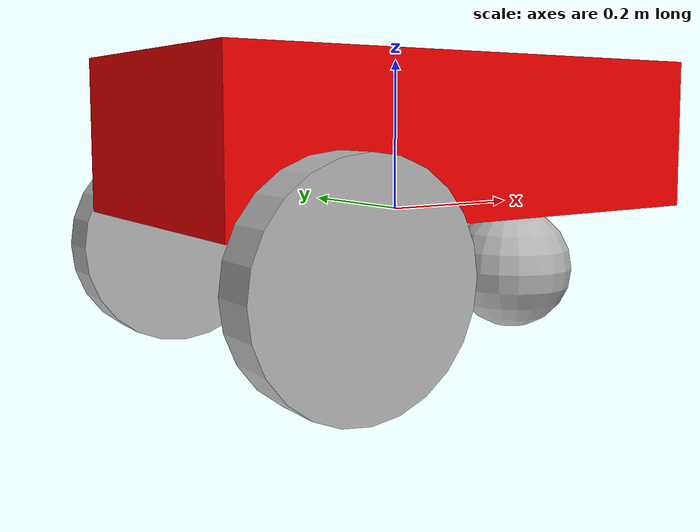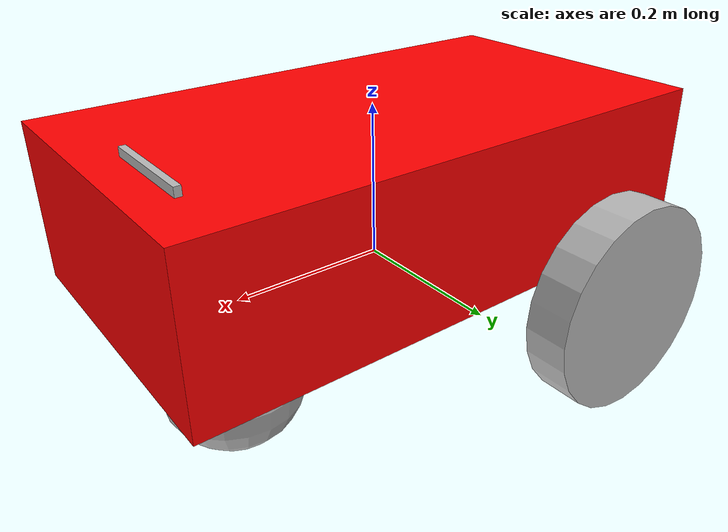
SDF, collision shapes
<?xml version="1.0" ?>

<sdf version="1.5">
  <model name="basic_mobile_bot">
  <static>false</static>

  <!-- ****************** ROBOT BASE FOOTPRINT ***************************  -->
  <pose>0.0 0.0 0.0 0.0 0.0 0.0</pose>
  <link name="base_footprint"/>

  <!-- ********************** ROBOT BASE *********************************  -->
  <link name="base_link">

    <collision name="base_collision">
      <pose>0 0 0.1 0 0 0</pose>
      <geometry>
        <box>
          <size>0.70 0.39 0.20</size>
        </box>
      </geometry>
    </collision>

    <visual name="base_visual">
      <pose>0 0 -0.05 1.5707963267949 0 3.141592654</pose>
      <geometry>
        <mesh>
          <uri>model://basic_mobile_bot_description/meshes/robot_base.stl</uri>
          <scale>1.0 1.0 1.0</scale>
        </mesh>
      </geometry>
      <material>
        <ambient>1.0 0.0 0.0 1.0</ambient>
        <diffuse>1.0 0.0 0.0 1.0</diffuse>
        <specular>0.0 0.0 0.0 1.0</specular>
        <emissive>0.0 0.0 0.0 1.0</emissive>
      </material>
    </visual>
  </link>

  <!-- *********************** IMU SENSOR SETUP **************************  -->
  <link name="imu_link">
      <sensor name="tb3_imu" type="imu">
        <always_on>true</always_on>
        <update_rate>200</update_rate>
        <visualize>true</visualize>
        <imu>
          <angular_velocity>
            <x>
              <noise type="gaussian">
                <mean>0.0</mean>
                <stddev>2e-4</stddev>
              </noise>
            </x>
            <y>
              <noise type="gaussian">
                <mean>0.0</mean>
                <stddev>2e-4</stddev>
              </noise>
            </y>
            <z>
              <noise type="gaussian">
                <mean>0.0</mean>
                <stddev>2e-4</stddev>
              </noise>
            </z>
          </angular_velocity>
          <linear_acceleration>
            <x>
              <noise type="gaussian">
                <mean>0.0</mean>
                <stddev>1.7e-2</stddev>
              </noise>
            </x>
            <y>
              <noise type="gaussian">
                <mean>0.0</mean>
                <stddev>1.7e-2</stddev>
              </noise>
            </y>
            <z>
              <noise type="gaussian">
                <mean>0.0</mean>
                <stddev>1.7e-2</stddev>
              </noise>
            </z>
          </linear_acceleration>
        </imu>
        <plugin name="turtlebot3_imu" filename="libgazebo_ros_imu_sensor.so">
          <initial_orientation_as_reference>false</initial_orientation_as_reference>
          <frame_name>imu_link</frame_name>
          <ros>
            <namespace>/imu</namespace>
            <remapping>~/out:=data</remapping>
          </ros>
        </plugin>
      </sensor>
    </link>

<!-- ****************************** Realsense Camera *****************************    -->
  <link name="realsense_link">

      <inertial>
        <pose>0.3 0 0.2 0 0 0</pose>

        <inertia>
          <ixx>0.001</ixx>
          <ixy>0.000</ixy>
          <ixz>0.000</ixz>
          <iyy>0.001</iyy>
          <iyz>0.000</iyz>
          <izz>0.001</izz>
        </inertia>
        <mass>0.035</mass>
      </inertial>

      <collision name="collision">
        <pose>0 0.047 0 0 0 0</pose>
        <geometry>
          <box>
            <size>0.008 0.130 0.022</size>
          </box>
        </geometry>
      </collision>
      <pose>0.3 0 0.2 0 0 0</pose>

      <sensor name="intel_realsense_r200_depth" type="depth">
        <always_on>1</always_on>
        <update_rate>1</update_rate>
        <pose>0 0 0 0 0 0</pose>
        <camera name="realsense_depth_camera">
          <horizontal_fov>1.5</horizontal_fov>
        </camera>

	      <plugin name="intel_realsense_r200_depth_driver" filename="libgazebo_ros_camera.so">
          <ros>
            <imageTopicName>/intel_realsense_r200_depth/color/image_raw</imageTopicName>
            <cameraInfoTopicName>/intel_realsense_r200_depth/color/camera_info</cameraInfoTopicName>
            <depthImageTopicName>/intel_realsense_r200_depth/depth/image_raw</depthImageTopicName>
            <depthImageCameraInfoTopicName>/intel_realsense_r200_depth/depth/camera_info</depthImageCameraInfoTopicName>
            <pointCloudTopicName>/intel_realsense_r200_depth/points</pointCloudTopicName>
          </ros>

          <camera_name>intel_realsense_r200_depth</camera_name>
          <frame_name>realsense_depth_frame</frame_name>
          <hack_baseline>0.07</hack_baseline>
          <min_depth>0.0001</min_depth>
        </plugin>
      </sensor>

  <sensor name="intel_realsense_r200_rgb" type="camera">
      <always_on>true</always_on>
      <visualize>true</visualize>
      <update_rate>30</update_rate>
	    <pose>0 0 0 0 0 0</pose>
      <camera name="realsense_rgb_camera">
          <horizontal_fov>1.5</horizontal_fov>
          <image>
            <width>1920</width>
            <height>1080</height>
            <format>R8G8B8</format>
          </image>
          <clip>
            <near>0.02</near>
            <far>300</far>
          </clip>
          <noise>
            <type>gaussian</type>
            <mean>0.0</mean>
            <stddev>0.007</stddev>
          </noise>
      </camera>
        <plugin name="intel_realsense_r200_rgb_driver" filename="libgazebo_ros_camera.so">
            <ros>
            </ros>
            <camera_name>intel_realsense_r200_rgb</camera_name>
            <frame_name>realsense_rgb_frame</frame_name>
            <hack_baseline>0.07</hack_baseline>
        </plugin>
    </sensor>
  </link>

  <!-- *********************** DRIVE WHEELS ******************************  -->
  <link name="drivewhl_l_link">
    <pose>-0.221 0.23 -0.05 0 1.570796 1.570796</pose>

    <collision name="drivewhl_l_collision">
      <geometry>
        <cylinder>
          <radius>0.14</radius>
          <length>0.06</length>
        </cylinder>
      </geometry>
    </collision>

    <visual name="drivewhl_l_visual">
      <geometry>
        <cylinder>
          <radius>0.14</radius>
          <length>0.06</length>
        </cylinder>
      </geometry>
    </visual>
  </link>

  <link name="drivewhl_r_link">
    <pose>-0.221 -0.23 -0.05 0 1.570796 1.570796</pose>

    <collision name="drivewhl_r_collision">
      <geometry>
        <cylinder>
          <radius>0.14</radius>
          <length>0.06</length>
        </cylinder>
      </geometry>
    </collision>

    <visual name="drivewhl_r_visual">
      <geometry>
        <cylinder>
          <radius>0.14</radius>
          <length>0.06</length>
        </cylinder>
      </geometry>
    </visual>
  </link>

  <!-- *********************** CASTER WHEEL ******************************  -->
  <link name='front_caster'>
    <pose>0.217 0 -0.1 0 0 0</pose>
    <inertial>
      <inertia>
        <ixx>0.001</ixx>
        <ixy>0.000</ixy>
        <ixz>0.000</ixz>
        <iyy>0.001</iyy>
        <iyz>0.000</iyz>
        <izz>0.001</izz>
      </inertia>
      <mass>70.0</mass>
    </inertial>
    <collision name='collision'>
      <geometry>
        <sphere>
          <radius>0.09</radius>
        </sphere>
      </geometry>
      <surface>
        <friction>
          <ode>
            <mu>0.01</mu>
            <mu2>0.01</mu2>
            <slip1>1.0</slip1>
            <slip2>1.0</slip2>
          </ode>
        </friction>
      </surface>
    </collision>
    <visual name="front_caster_visual">
      <geometry>
        <sphere>
          <radius>0.09</radius>
        </sphere>
      </geometry>
    </visual>
  </link>

  <!-- ************************ JOINTS ***********************************  -->
  <!-- Pose of the joint is the same as the child link frame -->
  <!-- Axis is the axis of rotation relative to the child link frame -->

  <joint name="base_joint" type="fixed">
    <parent>base_footprint</parent>
    <child>base_link</child>
    <pose>0 0 0 0 0 0</pose>
  </joint>

  <joint name="drivewhl_l_joint" type="revolute">
    <parent>base_link</parent>
    <child>drivewhl_l_link</child>
    <pose>0 0 0 0 0 0</pose>
    <axis>
      <xyz>0 0 1</xyz>
    </axis>
  </joint>

  <joint name="drivewhl_r_joint" type="revolute">
    <parent>base_link</parent>
    <child>drivewhl_r_link</child>
    <pose>0 0 0 0 0 0</pose>
    <axis>
      <xyz>0 0 1</xyz>
    </axis>
  </joint>

  <joint name='caster_joint' type='fixed'>
    <parent>base_link</parent>
    <child>front_caster</child>
    <pose>0 0 0 0 0 0</pose>
  </joint>

  <joint name="imu_joint" type="fixed">
    <parent>base_link</parent>
    <child>imu_link</child>
    <pose>0 0 0 0 0 0</pose>
  </joint>

  <joint name="lidar_joint" type="fixed">
      <parent>base_link</parent>
      <child>base_scan</child>
      <pose>-0.064 0 0.121 0 0 0</pose>
      <axis>
        <xyz>0 0 1</xyz>
      </axis>
  </joint>

 <joint name="camera_joint" type="fixed">
    <parent>base_link</parent>
    <child>realsense_link</child>
    <pose>0 0 0 0 0 0</pose>
  </joint>

 <!-- *********************** WHEEL ODOMETRY ***************************    -->
  <plugin name="basic_mobile_bot_diff_drive" filename="libgazebo_ros_diff_drive.so">

    <update_rate>30</update_rate>

    <!-- wheels -->
    <left_joint>drivewhl_l_joint</left_joint>
    <right_joint>drivewhl_r_joint</right_joint>

    <!-- kinematics -->
    <wheel_separation>0.52</wheel_separation>
    <wheel_diameter>0.28</wheel_diameter>

    <!-- limits -->
    <max_wheel_torque>20</max_wheel_torque>
    <max_wheel_acceleration>1.0</max_wheel_acceleration>

    <!-- Receive velocity commands on this ROS topic -->
    <command_topic>cmd_vel</command_topic>

    <!-- output -->
    <!-- When false, publish no wheel odometry data to a ROS topic -->
    <publish_odom>true</publish_odom>

    <!-- When true, publish coordinate transform from odom to base_footprint -->
    <!-- I usually use the robot_localization package to publish this transform -->
    <publish_odom_tf>false</publish_odom_tf>

    <!-- When true, publish coordinate transform from base_link to the wheels -->
    <!-- The robot_state_publisher package is often used to publish this transform -->
    <publish_wheel_tf>false</publish_wheel_tf>

    <odometry_topic>odom</odometry_topic>
    <odometry_frame>odom</odometry_frame>
    <robot_base_frame>base_footprint</robot_base_frame>

    <!-- Odometry source, 0 for ENCODER, 1 for WORLD, defaults to WORLD -->
    <odometry_source>1</odometry_source>

    <!-- Change the ROS topic we will publish the odometry data to -->
    <ros>
      <remapping>odom:=wheel/odometry</remapping>
    </ros>

  </plugin>

 <!-- *********************** JOINT STATE PUBLISHER *********************   -->

  <plugin name="basic_mobile_bot_joint_state" filename="libgazebo_ros_joint_state_publisher.so">
    <ros>
      <remapping>~/out:=joint_states</remapping>
    </ros>
    <update_rate>30</update_rate>
    <joint_name>drivewhl_l_joint</joint_name>
    <joint_name>drivewhl_r_joint</joint_name>
  </plugin>

  </model>
</sdf>
